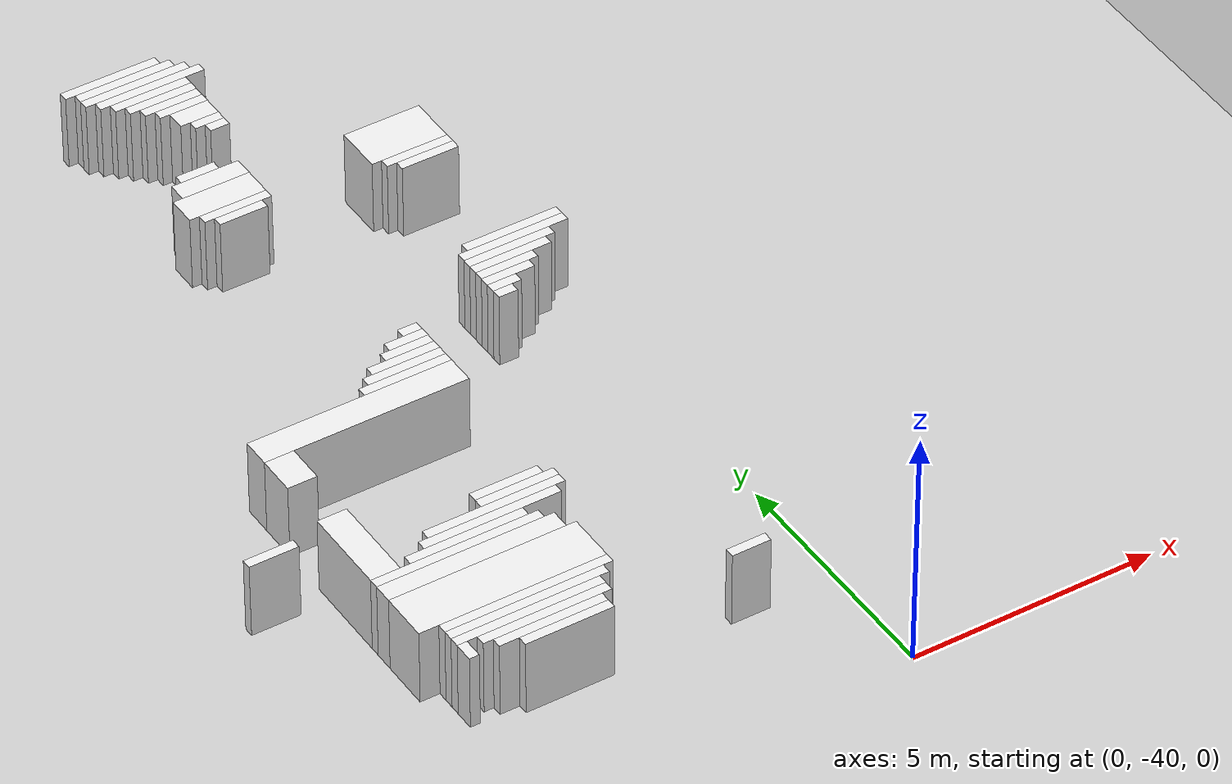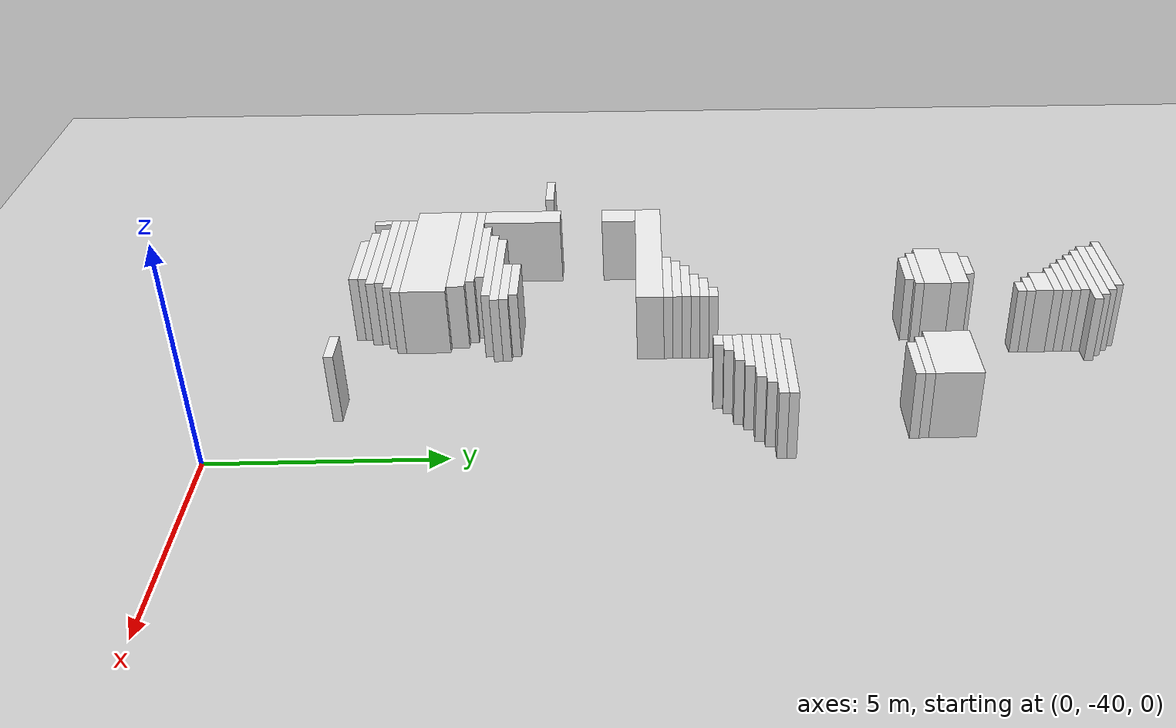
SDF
<sdf version="1.7">
 <world name="default">
  <model name="ground_plane">
   <static>1</static>
   <link name="link">
    <collision name="collision">
     <geometry><plane><normal>0 0 1</normal><size>120 120</size></plane></geometry>
    </collision>
    <visual name="visual">
     <geometry><plane><normal>0 0 1</normal><size>120 120</size></plane></geometry>
     <material>
      <script><uri>file://media/materials/scripts/gazebo.material</uri><name>Gazebo/Grey</name></script>
     </material>
    </visual>
   </link>
  </model>
  <model name="random_complex_02_model">
   <static>1</static>
   <link name="obs_2792">
    <pose>-4.8000 -20.5000 0.8000 0 0 0</pose>
    <collision name="obs_2792_col"><geometry><box><size>2.0000 0.2000 1.6000</size></box></geometry></collision>
    <visual name="obs_2792_vis">
     <geometry><box><size>2.0000 0.2000 1.6000</size></box></geometry>
     <material>
      <script><uri>file://media/materials/scripts/gazebo.material</uri><name>Gazebo/White</name></script>
     </material>
    </visual>
   </link>
   <link name="obs_2798">
    <pose>-4.6000 -20.7000 0.8000 0 0 0</pose>
    <collision name="obs_2798_col"><geometry><box><size>2.0000 0.2000 1.6000</size></box></geometry></collision>
    <visual name="obs_2798_vis">
     <geometry><box><size>2.0000 0.2000 1.6000</size></box></geometry>
     <material>
      <script><uri>file://media/materials/scripts/gazebo.material</uri><name>Gazebo/White</name></script>
     </material>
    </visual>
   </link>
   <link name="obs_2805">
    <pose>-4.5000 -20.9000 0.8000 0 0 0</pose>
    <collision name="obs_2805_col"><geometry><box><size>2.2000 0.2000 1.6000</size></box></geometry></collision>
    <visual name="obs_2805_vis">
     <geometry><box><size>2.2000 0.2000 1.6000</size></box></geometry>
     <material>
      <script><uri>file://media/materials/scripts/gazebo.material</uri><name>Gazebo/White</name></script>
     </material>
    </visual>
   </link>
   <link name="obs_2811">
    <pose>-4.3000 -21.1000 0.8000 0 0 0</pose>
    <collision name="obs_2811_col"><geometry><box><size>2.2000 0.2000 1.6000</size></box></geometry></collision>
    <visual name="obs_2811_vis">
     <geometry><box><size>2.2000 0.2000 1.6000</size></box></geometry>
     <material>
      <script><uri>file://media/materials/scripts/gazebo.material</uri><name>Gazebo/White</name></script>
     </material>
    </visual>
   </link>
   <link name="obs_2817">
    <pose>-4.4000 -21.3000 0.8000 0 0 0</pose>
    <collision name="obs_2817_col"><geometry><box><size>1.6000 0.2000 1.6000</size></box></geometry></collision>
    <visual name="obs_2817_vis">
     <geometry><box><size>1.6000 0.2000 1.6000</size></box></geometry>
     <material>
      <script><uri>file://media/materials/scripts/gazebo.material</uri><name>Gazebo/White</name></script>
     </material>
    </visual>
   </link>
   <link name="obs_2824">
    <pose>-4.3000 -21.5000 0.8000 0 0 0</pose>
    <collision name="obs_2824_col"><geometry><box><size>1.4000 0.2000 1.6000</size></box></geometry></collision>
    <visual name="obs_2824_vis">
     <geometry><box><size>1.4000 0.2000 1.6000</size></box></geometry>
     <material>
      <script><uri>file://media/materials/scripts/gazebo.material</uri><name>Gazebo/White</name></script>
     </material>
    </visual>
   </link>
   <link name="obs_2831">
    <pose>-4.2000 -21.7000 0.8000 0 0 0</pose>
    <collision name="obs_2831_col"><geometry><box><size>1.2000 0.2000 1.6000</size></box></geometry></collision>
    <visual name="obs_2831_vis">
     <geometry><box><size>1.2000 0.2000 1.6000</size></box></geometry>
     <material>
      <script><uri>file://media/materials/scripts/gazebo.material</uri><name>Gazebo/White</name></script>
     </material>
    </visual>
   </link>
   <link name="obs_2838">
    <pose>-4.1000 -21.9000 0.8000 0 0 0</pose>
    <collision name="obs_2838_col"><geometry><box><size>1.0000 0.2000 1.6000</size></box></geometry></collision>
    <visual name="obs_2838_vis">
     <geometry><box><size>1.0000 0.2000 1.6000</size></box></geometry>
     <material>
      <script><uri>file://media/materials/scripts/gazebo.material</uri><name>Gazebo/White</name></script>
     </material>
    </visual>
   </link>
   <link name="obs_2848">
    <pose>-4.0000 -22.2000 0.8000 0 0 0</pose>
    <collision name="obs_2848_col"><geometry><box><size>0.8000 0.4000 1.6000</size></box></geometry></collision>
    <visual name="obs_2848_vis">
     <geometry><box><size>0.8000 0.4000 1.6000</size></box></geometry>
     <material>
      <script><uri>file://media/materials/scripts/gazebo.material</uri><name>Gazebo/White</name></script>
     </material>
    </visual>
   </link>
   <link name="obs_2853">
    <pose>-3.9000 -22.5000 0.8000 0 0 0</pose>
    <collision name="obs_2853_col"><geometry><box><size>0.6000 0.2000 1.6000</size></box></geometry></collision>
    <visual name="obs_2853_vis">
     <geometry><box><size>0.6000 0.2000 1.6000</size></box></geometry>
     <material>
      <script><uri>file://media/materials/scripts/gazebo.material</uri><name>Gazebo/White</name></script>
     </material>
    </visual>
   </link>
   <link name="obs_2861">
    <pose>-3.8000 -22.7000 0.8000 0 0 0</pose>
    <collision name="obs_2861_col"><geometry><box><size>0.4000 0.2000 1.6000</size></box></geometry></collision>
    <visual name="obs_2861_vis">
     <geometry><box><size>0.4000 0.2000 1.6000</size></box></geometry>
     <material>
      <script><uri>file://media/materials/scripts/gazebo.material</uri><name>Gazebo/White</name></script>
     </material>
    </visual>
   </link>
   <link name="obs_2901">
    <pose>-4.8000 -23.7000 0.8000 0 0 0</pose>
    <collision name="obs_2901_col"><geometry><box><size>0.8000 0.2000 1.6000</size></box></geometry></collision>
    <visual name="obs_2901_vis">
     <geometry><box><size>0.8000 0.2000 1.6000</size></box></geometry>
     <material>
      <script><uri>file://media/materials/scripts/gazebo.material</uri><name>Gazebo/White</name></script>
     </material>
    </visual>
   </link>
   <link name="obs_2911">
    <pose>-4.7000 -24.0000 0.8000 0 0 0</pose>
    <collision name="obs_2911_col"><geometry><box><size>1.4000 0.4000 1.6000</size></box></geometry></collision>
    <visual name="obs_2911_vis">
     <geometry><box><size>1.4000 0.4000 1.6000</size></box></geometry>
     <material>
      <script><uri>file://media/materials/scripts/gazebo.material</uri><name>Gazebo/White</name></script>
     </material>
    </visual>
   </link>
   <link name="obs_2934">
    <pose>-4.8000 -24.5000 0.8000 0 0 0</pose>
    <collision name="obs_2934_col"><geometry><box><size>1.6000 0.6000 1.6000</size></box></geometry></collision>
    <visual name="obs_2934_vis">
     <geometry><box><size>1.6000 0.6000 1.6000</size></box></geometry>
     <material>
      <script><uri>file://media/materials/scripts/gazebo.material</uri><name>Gazebo/White</name></script>
     </material>
    </visual>
   </link>
   <link name="obs_2944">
    <pose>-4.7000 -24.9000 0.8000 0 0 0</pose>
    <collision name="obs_2944_col"><geometry><box><size>1.4000 0.2000 1.6000</size></box></geometry></collision>
    <visual name="obs_2944_vis">
     <geometry><box><size>1.4000 0.2000 1.6000</size></box></geometry>
     <material>
      <script><uri>file://media/materials/scripts/gazebo.material</uri><name>Gazebo/White</name></script>
     </material>
    </visual>
   </link>
   <link name="obs_2950">
    <pose>-1.2000 -24.7000 0.8000 0 0 0</pose>
    <collision name="obs_2950_col"><geometry><box><size>1.6000 1.0000 1.6000</size></box></geometry></collision>
    <visual name="obs_2950_vis">
     <geometry><box><size>1.6000 1.0000 1.6000</size></box></geometry>
     <material>
      <script><uri>file://media/materials/scripts/gazebo.material</uri><name>Gazebo/White</name></script>
     </material>
    </visual>
   </link>
   <link name="obs_2954">
    <pose>-4.7000 -25.1000 0.8000 0 0 0</pose>
    <collision name="obs_2954_col"><geometry><box><size>1.0000 0.2000 1.6000</size></box></geometry></collision>
    <visual name="obs_2954_vis">
     <geometry><box><size>1.0000 0.2000 1.6000</size></box></geometry>
     <material>
      <script><uri>file://media/materials/scripts/gazebo.material</uri><name>Gazebo/White</name></script>
     </material>
    </visual>
   </link>
   <link name="obs_2961">
    <pose>-1.1000 -25.3000 0.8000 0 0 0</pose>
    <collision name="obs_2961_col"><geometry><box><size>1.4000 0.2000 1.6000</size></box></geometry></collision>
    <visual name="obs_2961_vis">
     <geometry><box><size>1.4000 0.2000 1.6000</size></box></geometry>
     <material>
      <script><uri>file://media/materials/scripts/gazebo.material</uri><name>Gazebo/White</name></script>
     </material>
    </visual>
   </link>
   <link name="obs_2968">
    <pose>-1.0000 -25.5000 0.8000 0 0 0</pose>
    <collision name="obs_2968_col"><geometry><box><size>1.2000 0.2000 1.6000</size></box></geometry></collision>
    <visual name="obs_2968_vis">
     <geometry><box><size>1.2000 0.2000 1.6000</size></box></geometry>
     <material>
      <script><uri>file://media/materials/scripts/gazebo.material</uri><name>Gazebo/White</name></script>
     </material>
    </visual>
   </link>
   <link name="obs_3029">
    <pose>-0.8000 -28.1000 0.8000 0 0 0</pose>
    <collision name="obs_3029_col"><geometry><box><size>2.0000 0.2000 1.6000</size></box></geometry></collision>
    <visual name="obs_3029_vis">
     <geometry><box><size>2.0000 0.2000 1.6000</size></box></geometry>
     <material>
      <script><uri>file://media/materials/scripts/gazebo.material</uri><name>Gazebo/White</name></script>
     </material>
    </visual>
   </link>
   <link name="obs_3034">
    <pose>-0.9000 -28.3000 0.8000 0 0 0</pose>
    <collision name="obs_3034_col"><geometry><box><size>2.2000 0.2000 1.6000</size></box></geometry></collision>
    <visual name="obs_3034_vis">
     <geometry><box><size>2.2000 0.2000 1.6000</size></box></geometry>
     <material>
      <script><uri>file://media/materials/scripts/gazebo.material</uri><name>Gazebo/White</name></script>
     </material>
    </visual>
   </link>
   <link name="obs_3038">
    <pose>-1.1000 -28.5000 0.8000 0 0 0</pose>
    <collision name="obs_3038_col"><geometry><box><size>1.8000 0.2000 1.6000</size></box></geometry></collision>
    <visual name="obs_3038_vis">
     <geometry><box><size>1.8000 0.2000 1.6000</size></box></geometry>
     <material>
      <script><uri>file://media/materials/scripts/gazebo.material</uri><name>Gazebo/White</name></script>
     </material>
    </visual>
   </link>
   <link name="obs_3043">
    <pose>-1.2000 -28.7000 0.8000 0 0 0</pose>
    <collision name="obs_3043_col"><geometry><box><size>1.6000 0.2000 1.6000</size></box></geometry></collision>
    <visual name="obs_3043_vis">
     <geometry><box><size>1.6000 0.2000 1.6000</size></box></geometry>
     <material>
      <script><uri>file://media/materials/scripts/gazebo.material</uri><name>Gazebo/White</name></script>
     </material>
    </visual>
   </link>
   <link name="obs_3047">
    <pose>-1.4000 -28.9000 0.8000 0 0 0</pose>
    <collision name="obs_3047_col"><geometry><box><size>1.2000 0.2000 1.6000</size></box></geometry></collision>
    <visual name="obs_3047_vis">
     <geometry><box><size>1.2000 0.2000 1.6000</size></box></geometry>
     <material>
      <script><uri>file://media/materials/scripts/gazebo.material</uri><name>Gazebo/White</name></script>
     </material>
    </visual>
   </link>
   <link name="obs_3053">
    <pose>-1.5000 -29.1000 0.8000 0 0 0</pose>
    <collision name="obs_3053_col"><geometry><box><size>1.0000 0.2000 1.6000</size></box></geometry></collision>
    <visual name="obs_3053_vis">
     <geometry><box><size>1.0000 0.2000 1.6000</size></box></geometry>
     <material>
      <script><uri>file://media/materials/scripts/gazebo.material</uri><name>Gazebo/White</name></script>
     </material>
    </visual>
   </link>
   <link name="obs_3060">
    <pose>-1.7000 -29.3000 0.8000 0 0 0</pose>
    <collision name="obs_3060_col"><geometry><box><size>0.6000 0.2000 1.6000</size></box></geometry></collision>
    <visual name="obs_3060_vis">
     <geometry><box><size>0.6000 0.2000 1.6000</size></box></geometry>
     <material>
      <script><uri>file://media/materials/scripts/gazebo.material</uri><name>Gazebo/White</name></script>
     </material>
    </visual>
   </link>
   <link name="obs_3066">
    <pose>-3.8000 -29.5000 0.8000 0 0 0</pose>
    <collision name="obs_3066_col"><geometry><box><size>0.4000 0.2000 1.6000</size></box></geometry></collision>
    <visual name="obs_3066_vis">
     <geometry><box><size>0.4000 0.2000 1.6000</size></box></geometry>
     <material>
      <script><uri>file://media/materials/scripts/gazebo.material</uri><name>Gazebo/White</name></script>
     </material>
    </visual>
   </link>
   <link name="obs_3067">
    <pose>-1.8000 -29.5000 0.8000 0 0 0</pose>
    <collision name="obs_3067_col"><geometry><box><size>0.4000 0.2000 1.6000</size></box></geometry></collision>
    <visual name="obs_3067_vis">
     <geometry><box><size>0.4000 0.2000 1.6000</size></box></geometry>
     <material>
      <script><uri>file://media/materials/scripts/gazebo.material</uri><name>Gazebo/White</name></script>
     </material>
    </visual>
   </link>
   <link name="obs_3074">
    <pose>-4.0000 -29.7000 0.8000 0 0 0</pose>
    <collision name="obs_3074_col"><geometry><box><size>0.8000 0.2000 1.6000</size></box></geometry></collision>
    <visual name="obs_3074_vis">
     <geometry><box><size>0.8000 0.2000 1.6000</size></box></geometry>
     <material>
      <script><uri>file://media/materials/scripts/gazebo.material</uri><name>Gazebo/White</name></script>
     </material>
    </visual>
   </link>
   <link name="obs_3080">
    <pose>-4.1000 -29.9000 0.8000 0 0 0</pose>
    <collision name="obs_3080_col"><geometry><box><size>1.0000 0.2000 1.6000</size></box></geometry></collision>
    <visual name="obs_3080_vis">
     <geometry><box><size>1.0000 0.2000 1.6000</size></box></geometry>
     <material>
      <script><uri>file://media/materials/scripts/gazebo.material</uri><name>Gazebo/White</name></script>
     </material>
    </visual>
   </link>
   <link name="obs_3087">
    <pose>-4.3000 -30.1000 0.8000 0 0 0</pose>
    <collision name="obs_3087_col"><geometry><box><size>1.4000 0.2000 1.6000</size></box></geometry></collision>
    <visual name="obs_3087_vis">
     <geometry><box><size>1.4000 0.2000 1.6000</size></box></geometry>
     <material>
      <script><uri>file://media/materials/scripts/gazebo.material</uri><name>Gazebo/White</name></script>
     </material>
    </visual>
   </link>
   <link name="obs_3091">
    <pose>-4.4000 -30.3000 0.8000 0 0 0</pose>
    <collision name="obs_3091_col"><geometry><box><size>1.6000 0.2000 1.6000</size></box></geometry></collision>
    <visual name="obs_3091_vis">
     <geometry><box><size>1.6000 0.2000 1.6000</size></box></geometry>
     <material>
      <script><uri>file://media/materials/scripts/gazebo.material</uri><name>Gazebo/White</name></script>
     </material>
    </visual>
   </link>
   <link name="obs_3097">
    <pose>-4.5000 -30.5000 0.8000 0 0 0</pose>
    <collision name="obs_3097_col"><geometry><box><size>1.8000 0.2000 1.6000</size></box></geometry></collision>
    <visual name="obs_3097_vis">
     <geometry><box><size>1.8000 0.2000 1.6000</size></box></geometry>
     <material>
      <script><uri>file://media/materials/scripts/gazebo.material</uri><name>Gazebo/White</name></script>
     </material>
    </visual>
   </link>
   <link name="obs_3113">
    <pose>-5.7000 -30.9000 0.8000 0 0 0</pose>
    <collision name="obs_3113_col"><geometry><box><size>4.2000 0.6000 1.6000</size></box></geometry></collision>
    <visual name="obs_3113_vis">
     <geometry><box><size>4.2000 0.6000 1.6000</size></box></geometry>
     <material>
      <script><uri>file://media/materials/scripts/gazebo.material</uri><name>Gazebo/White</name></script>
     </material>
    </visual>
   </link>
   <link name="obs_3140">
    <pose>-7.5000 -31.6000 0.8000 0 0 0</pose>
    <collision name="obs_3140_col"><geometry><box><size>0.6000 0.8000 1.6000</size></box></geometry></collision>
    <visual name="obs_3140_vis">
     <geometry><box><size>0.6000 0.8000 1.6000</size></box></geometry>
     <material>
      <script><uri>file://media/materials/scripts/gazebo.material</uri><name>Gazebo/White</name></script>
     </material>
    </visual>
   </link>
   <link name="obs_3171">
    <pose>-8.9000 -33.3000 0.8000 0 0 0</pose>
    <collision name="obs_3171_col"><geometry><box><size>1.0000 0.2000 1.6000</size></box></geometry></collision>
    <visual name="obs_3171_vis">
     <geometry><box><size>1.0000 0.2000 1.6000</size></box></geometry>
     <material>
      <script><uri>file://media/materials/scripts/gazebo.material</uri><name>Gazebo/White</name></script>
     </material>
    </visual>
   </link>
   <link name="obs_3178">
    <pose>-4.5000 -33.9000 0.8000 0 0 0</pose>
    <collision name="obs_3178_col"><geometry><box><size>1.4000 0.2000 1.6000</size></box></geometry></collision>
    <visual name="obs_3178_vis">
     <geometry><box><size>1.4000 0.2000 1.6000</size></box></geometry>
     <material>
      <script><uri>file://media/materials/scripts/gazebo.material</uri><name>Gazebo/White</name></script>
     </material>
    </visual>
   </link>
   <link name="obs_3180">
    <pose>-4.4000 -34.1000 0.8000 0 0 0</pose>
    <collision name="obs_3180_col"><geometry><box><size>1.6000 0.2000 1.6000</size></box></geometry></collision>
    <visual name="obs_3180_vis">
     <geometry><box><size>1.6000 0.2000 1.6000</size></box></geometry>
     <material>
      <script><uri>file://media/materials/scripts/gazebo.material</uri><name>Gazebo/White</name></script>
     </material>
    </visual>
   </link>
   <link name="obs_3185">
    <pose>-5.0000 -34.3000 0.8000 0 0 0</pose>
    <collision name="obs_3185_col"><geometry><box><size>2.8000 0.2000 1.6000</size></box></geometry></collision>
    <visual name="obs_3185_vis">
     <geometry><box><size>2.8000 0.2000 1.6000</size></box></geometry>
     <material>
      <script><uri>file://media/materials/scripts/gazebo.material</uri><name>Gazebo/White</name></script>
     </material>
    </visual>
   </link>
   <link name="obs_3187">
    <pose>-5.2000 -34.5000 0.8000 0 0 0</pose>
    <collision name="obs_3187_col"><geometry><box><size>2.8000 0.2000 1.6000</size></box></geometry></collision>
    <visual name="obs_3187_vis">
     <geometry><box><size>2.8000 0.2000 1.6000</size></box></geometry>
     <material>
      <script><uri>file://media/materials/scripts/gazebo.material</uri><name>Gazebo/White</name></script>
     </material>
    </visual>
   </link>
   <link name="obs_3188">
    <pose>-7.5000 -33.9000 0.8000 0 0 0</pose>
    <collision name="obs_3188_col"><geometry><box><size>0.6000 1.8000 1.6000</size></box></geometry></collision>
    <visual name="obs_3188_vis">
     <geometry><box><size>0.6000 1.8000 1.6000</size></box></geometry>
     <material>
      <script><uri>file://media/materials/scripts/gazebo.material</uri><name>Gazebo/White</name></script>
     </material>
    </visual>
   </link>
   <link name="obs_3189">
    <pose>-5.8000 -34.7000 0.8000 0 0 0</pose>
    <collision name="obs_3189_col"><geometry><box><size>2.4000 0.2000 1.6000</size></box></geometry></collision>
    <visual name="obs_3189_vis">
     <geometry><box><size>2.4000 0.2000 1.6000</size></box></geometry>
     <material>
      <script><uri>file://media/materials/scripts/gazebo.material</uri><name>Gazebo/White</name></script>
     </material>
    </visual>
   </link>
   <link name="obs_3191">
    <pose>-6.1000 -34.9000 0.8000 0 0 0</pose>
    <collision name="obs_3191_col"><geometry><box><size>3.4000 0.2000 1.6000</size></box></geometry></collision>
    <visual name="obs_3191_vis">
     <geometry><box><size>3.4000 0.2000 1.6000</size></box></geometry>
     <material>
      <script><uri>file://media/materials/scripts/gazebo.material</uri><name>Gazebo/White</name></script>
     </material>
    </visual>
   </link>
   <link name="obs_3196">
    <pose>-6.0000 -35.2000 0.8000 0 0 0</pose>
    <collision name="obs_3196_col"><geometry><box><size>3.6000 0.4000 1.6000</size></box></geometry></collision>
    <visual name="obs_3196_vis">
     <geometry><box><size>3.6000 0.4000 1.6000</size></box></geometry>
     <material>
      <script><uri>file://media/materials/scripts/gazebo.material</uri><name>Gazebo/White</name></script>
     </material>
    </visual>
   </link>
   <link name="obs_3209">
    <pose>-5.9000 -35.9000 0.8000 0 0 0</pose>
    <collision name="obs_3209_col"><geometry><box><size>3.8000 1.0000 1.6000</size></box></geometry></collision>
    <visual name="obs_3209_vis">
     <geometry><box><size>3.8000 1.0000 1.6000</size></box></geometry>
     <material>
      <script><uri>file://media/materials/scripts/gazebo.material</uri><name>Gazebo/White</name></script>
     </material>
    </visual>
   </link>
   <link name="obs_3214">
    <pose>-5.7000 -36.5000 0.8000 0 0 0</pose>
    <collision name="obs_3214_col"><geometry><box><size>3.4000 0.2000 1.6000</size></box></geometry></collision>
    <visual name="obs_3214_vis">
     <geometry><box><size>3.4000 0.2000 1.6000</size></box></geometry>
     <material>
      <script><uri>file://media/materials/scripts/gazebo.material</uri><name>Gazebo/White</name></script>
     </material>
    </visual>
   </link>
   <link name="obs_3218">
    <pose>-5.8000 -36.7000 0.8000 0 0 0</pose>
    <collision name="obs_3218_col"><geometry><box><size>3.2000 0.2000 1.6000</size></box></geometry></collision>
    <visual name="obs_3218_vis">
     <geometry><box><size>3.2000 0.2000 1.6000</size></box></geometry>
     <material>
      <script><uri>file://media/materials/scripts/gazebo.material</uri><name>Gazebo/White</name></script>
     </material>
    </visual>
   </link>
   <link name="obs_3223">
    <pose>-5.9000 -36.9000 0.8000 0 0 0</pose>
    <collision name="obs_3223_col"><geometry><box><size>3.0000 0.2000 1.6000</size></box></geometry></collision>
    <visual name="obs_3223_vis">
     <geometry><box><size>3.0000 0.2000 1.6000</size></box></geometry>
     <material>
      <script><uri>file://media/materials/scripts/gazebo.material</uri><name>Gazebo/White</name></script>
     </material>
    </visual>
   </link>
   <link name="obs_3230">
    <pose>-5.7000 -37.1000 0.8000 0 0 0</pose>
    <collision name="obs_3230_col"><geometry><box><size>2.6000 0.2000 1.6000</size></box></geometry></collision>
    <visual name="obs_3230_vis">
     <geometry><box><size>2.6000 0.2000 1.6000</size></box></geometry>
     <material>
      <script><uri>file://media/materials/scripts/gazebo.material</uri><name>Gazebo/White</name></script>
     </material>
    </visual>
   </link>
   <link name="obs_3233">
    <pose>-7.3000 -37.2000 0.8000 0 0 0</pose>
    <collision name="obs_3233_col"><geometry><box><size>0.2000 0.4000 1.6000</size></box></geometry></collision>
    <visual name="obs_3233_vis">
     <geometry><box><size>0.2000 0.4000 1.6000</size></box></geometry>
     <material>
      <script><uri>file://media/materials/scripts/gazebo.material</uri><name>Gazebo/White</name></script>
     </material>
    </visual>
   </link>
   <link name="obs_3235">
    <pose>-5.7000 -37.3000 0.8000 0 0 0</pose>
    <collision name="obs_3235_col"><geometry><box><size>2.2000 0.2000 1.6000</size></box></geometry></collision>
    <visual name="obs_3235_vis">
     <geometry><box><size>2.2000 0.2000 1.6000</size></box></geometry>
     <material>
      <script><uri>file://media/materials/scripts/gazebo.material</uri><name>Gazebo/White</name></script>
     </material>
    </visual>
   </link>
   <link name="obs_3240">
    <pose>-5.5000 -37.5000 0.8000 0 0 0</pose>
    <collision name="obs_3240_col"><geometry><box><size>1.8000 0.2000 1.6000</size></box></geometry></collision>
    <visual name="obs_3240_vis">
     <geometry><box><size>1.8000 0.2000 1.6000</size></box></geometry>
     <material>
      <script><uri>file://media/materials/scripts/gazebo.material</uri><name>Gazebo/White</name></script>
     </material>
    </visual>
   </link>
   <link name="obs_3241">
    <pose>-1.8000 -37.5000 0.8000 0 0 0</pose>
    <collision name="obs_3241_col"><geometry><box><size>0.8000 0.2000 1.6000</size></box></geometry></collision>
    <visual name="obs_3241_vis">
     <geometry><box><size>0.8000 0.2000 1.6000</size></box></geometry>
     <material>
      <script><uri>file://media/materials/scripts/gazebo.material</uri><name>Gazebo/White</name></script>
     </material>
    </visual>
   </link>
  </model>
 </world>
</sdf>
